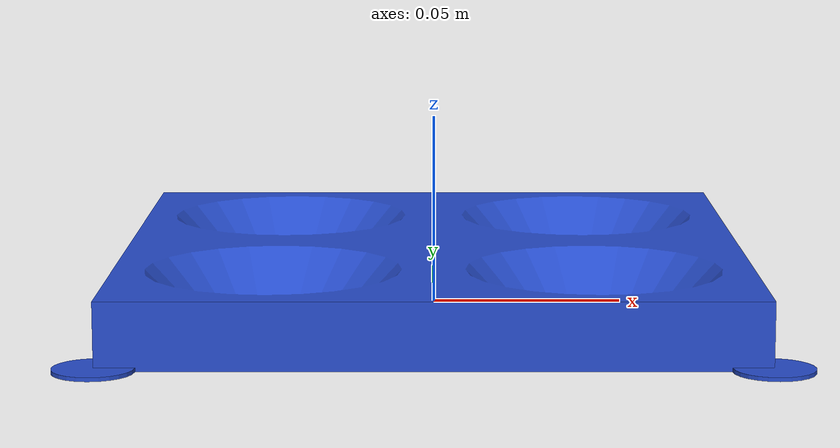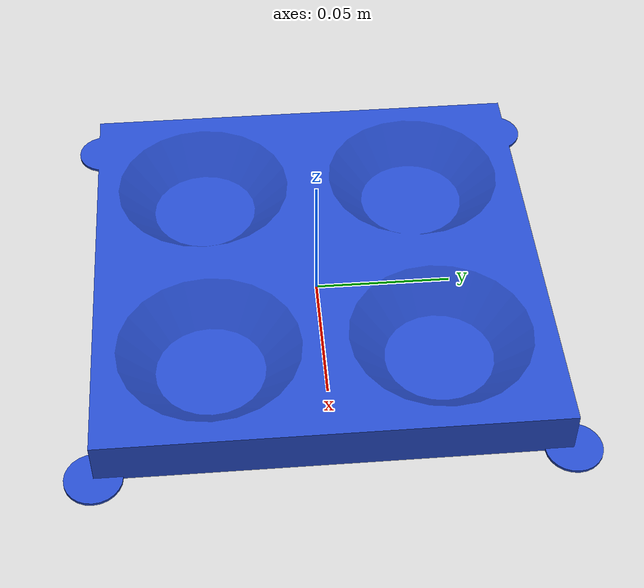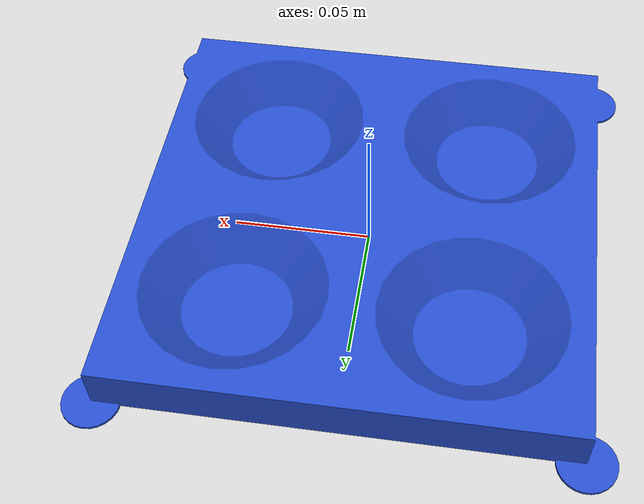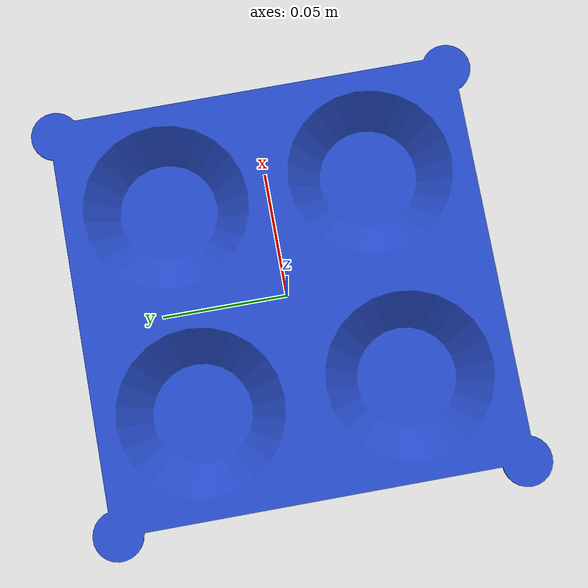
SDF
<?xml version='1.0'?>
<sdf version='1.6'>
  <model name='Medium_Gear_Vessel'>
    <link name='link_0'>
      <inertial>
        <mass>0.136</mass>
        <inertia>
          <ixx>0.000302</ixx>
          <ixy>0</ixy>
          <ixz>0</ixz>
          <iyy>0.000302</iyy>
          <iyz>0</iyz>
          <izz>0.000596</izz>
        </inertia>
	<pose>0 0 0.0080 0 0</pose>
	<!-- height = 0.017108 -->
      </inertial>
      <pose frame=''>0 0 0.001597 0 -0 0</pose>
      <visual name='visual'>
        <pose frame=''>0 0 0.006403 0 -0 0</pose>
        <geometry>
          <mesh>
            <scale>0.0254 0.0254 0.0254</scale>
            <uri>model://meshes/medium_gear_holder_centered.stl</uri>
          </mesh>
        </geometry>
        <material>
          <lighting>1</lighting>
          <script>
            <uri>file://media/materials/scripts/gazebo.material</uri>
            <name>Gazebo/Blue</name>
          </script>
          <shader type='pixel'/>
        </material>
        <transparency>0</transparency>
        <cast_shadows>1</cast_shadows>
      </visual>
      <collision name='collision'>
        <laser_retro>0</laser_retro>
        <max_contacts>100</max_contacts>
        <pose frame=''>0 0 0 0 -0 0</pose>
        <geometry>
          <box>
            <size>0.162229 0.162146 0.003194</size>
          </box>
        </geometry>
        <surface>
          <friction>
            <ode>
              <mu>2000</mu>
              <mu2>2000</mu2>
              <fdir1>0 0 0</fdir1>
              <slip1>0</slip1>
              <slip2>0</slip2>
            </ode>
            <torsional>
              <coefficient>1</coefficient>
              <patch_radius>0</patch_radius>
              <surface_radius>0</surface_radius>
              <use_patch_radius>1</use_patch_radius>
              <ode>
                <slip>0</slip>
              </ode>
            </torsional>
          </friction>
          <bounce>
            <restitution_coefficient>0</restitution_coefficient>
            <threshold>1e+06</threshold>
          </bounce>
          <contact>
            <collide_without_contact>0</collide_without_contact>
            <collide_without_contact_bitmask>1</collide_without_contact_bitmask>
            <collide_bitmask>1</collide_bitmask>
            <ode>
              <soft_cfm>0</soft_cfm>
              <soft_erp>0.2</soft_erp>
              <kp>1e+13</kp>
              <kd>1</kd>
              <max_vel>0.01</max_vel>
              <min_depth>0</min_depth>
            </ode>
            <bullet>
              <split_impulse>1</split_impulse>
              <split_impulse_penetration_threshold>-0.01</split_impulse_penetration_threshold>
              <soft_cfm>0</soft_cfm>
              <soft_erp>0.2</soft_erp>
              <kp>1e+13</kp>
              <kd>1</kd>
            </bullet>
          </contact>
        </surface>
      </collision>
    </link>
    <static>0</static>
    <allow_auto_disable>1</allow_auto_disable>
  </model>
</sdf>
